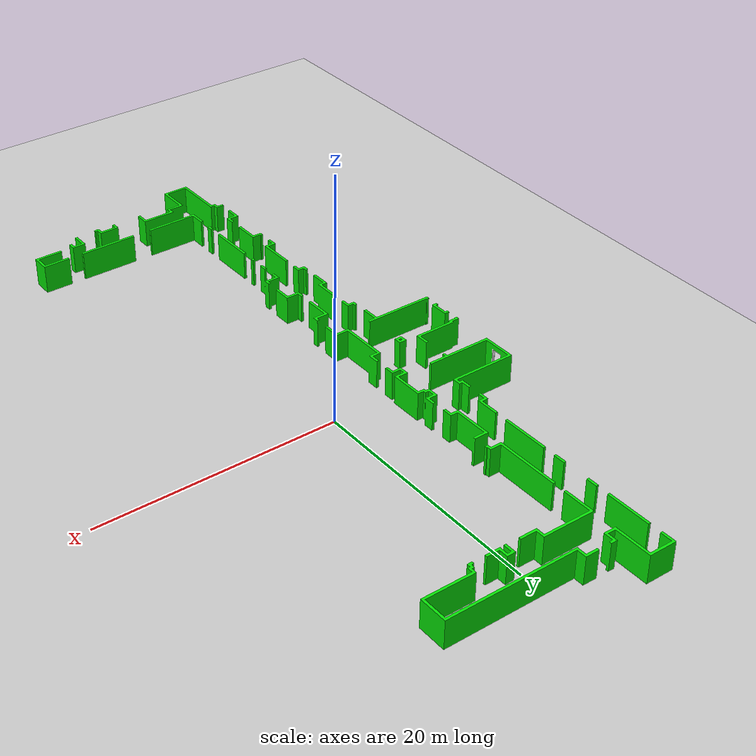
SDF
<sdf version="1.6">
 <world name="default">
  <light name="sun" type="directional">
   <pose>0 0 10 0 -0 0</pose>
   <diffuse>0.8 0.8 0.8 1</diffuse>
   <specular>0.2 0.2 0.2 1</specular>
   <attenuation>
    <range>1000</range>
    <constant>0.9</constant>
    <linear>0.01</linear>
    <quadratic>0.001</quadratic>
   </attenuation>
   <direction>-0.5 0.1 -0.9</direction>
  </light>
  <model name="ground_plane">
   <static>1</static>
   <link name="link">
    <collision name="collision">
     <geometry><plane><normal>0 0 1</normal><size>100 100</size></plane></geometry>
     <surface><friction><ode><mu>100</mu><mu2>50</mu2></ode></friction></surface>
    </collision>
    <visual name="visual">
     <cast_shadows>0</cast_shadows>
     <geometry><plane><normal>0 0 1</normal><size>100 100</size></plane></geometry>
     <material>
      <script><uri>file://media/materials/scripts/gazebo.material</uri><name>Gazebo/Grey</name></script>
     </material>
    </visual>
   </link>
  </model>
  <gravity>0 0 -9.8</gravity>
  <magnetic_field>6e-06 2.3e-05 -4.2e-05</magnetic_field>
  <atmosphere type="adiabatic"/>
  <physics name="default_physics" default="0" type="ode">
   <max_step_size>0.001</max_step_size>
   <real_time_factor>1</real_time_factor>
   <real_time_update_rate>1000</real_time_update_rate>
  </physics>
  <scene><ambient>0.4 0.4 0.4 1</ambient><background>0.7 0.7 0.7 1</background><shadows>1</shadows></scene>
  <spherical_coordinates>
   <surface_model>EARTH_WGS84</surface_model>
   <latitude_deg>0</latitude_deg>
   <longitude_deg>0</longitude_deg>
   <elevation>0</elevation>
   <heading_deg>0</heading_deg>
  </spherical_coordinates>
  <model name="UT_HALL2">
   <link name="UT_HALL2">
    <inertial>
     <pose>-3.8601 -7.9471 2.7308 0 -0 0</pose>
     <mass>19841</mass>
     <inertia>
      <ixx>5.721e+06</ixx>
      <ixy>847800</ixy>
      <ixz>7398.7</ixz>
      <iyy>378450</iyy>
      <iyz>49770</iyz>
      <izz>6.081e+06</izz>
     </inertia>
    </inertial>
    <collision name="UT_HALL2_collision">
     <pose>0 0 0 1.5708 -0 0</pose>
     <geometry><mesh><scale>1 1 1</scale><uri>model://UT_HALL2/meshes/UT_HALL2.dae</uri></mesh></geometry>
    </collision>
    <visual name="UT_HALL2_visual">
     <pose>0 0 0 1.5708 -0 0</pose>
     <geometry><mesh><scale>1 1 1</scale><uri>model://UT_HALL2/meshes/UT_HALL2.dae</uri></mesh></geometry>
    </visual>
   </link>
   <pose>0 0 0.5 0 0 0</pose>
  </model>
 </world>
</sdf>
